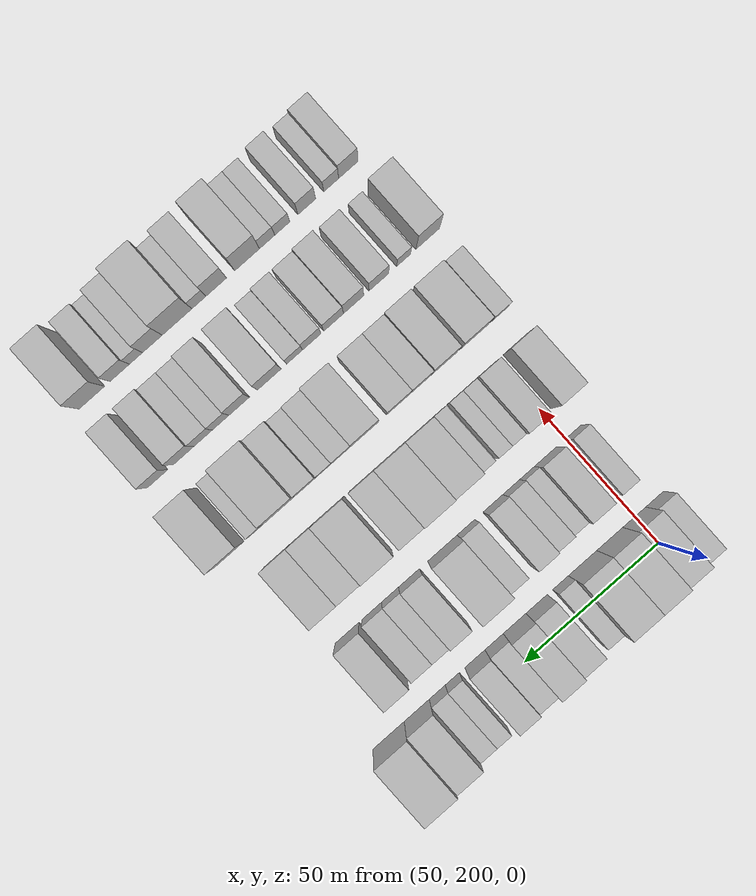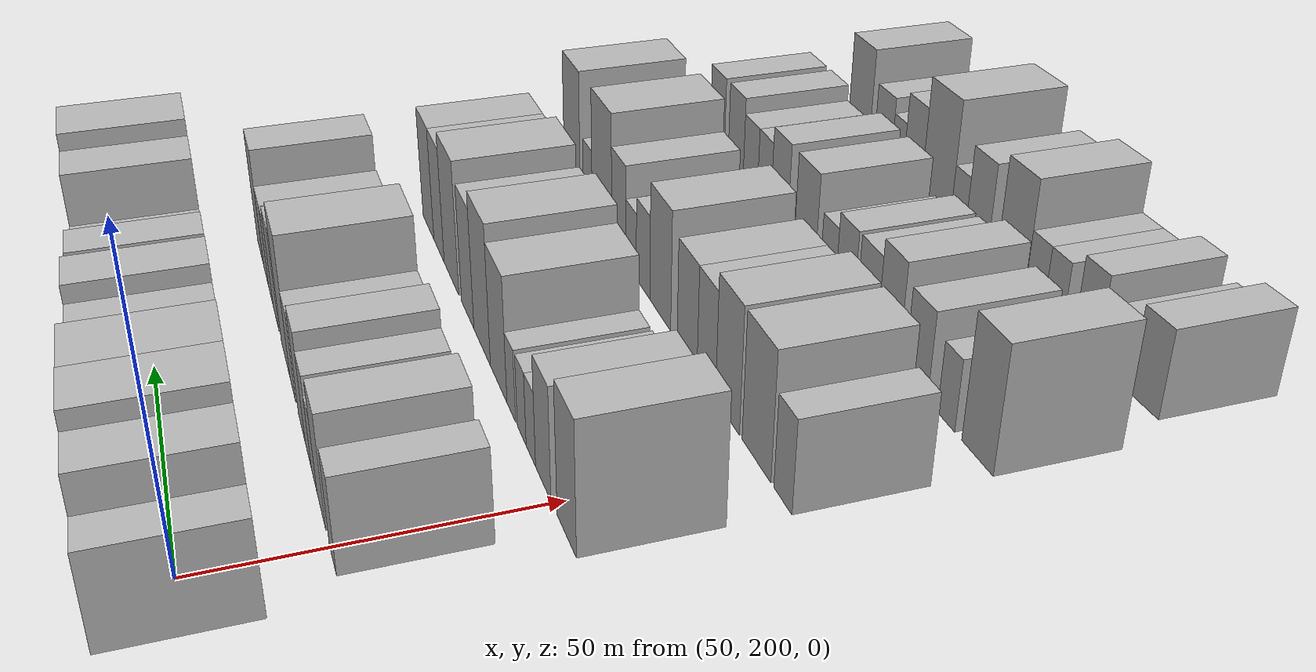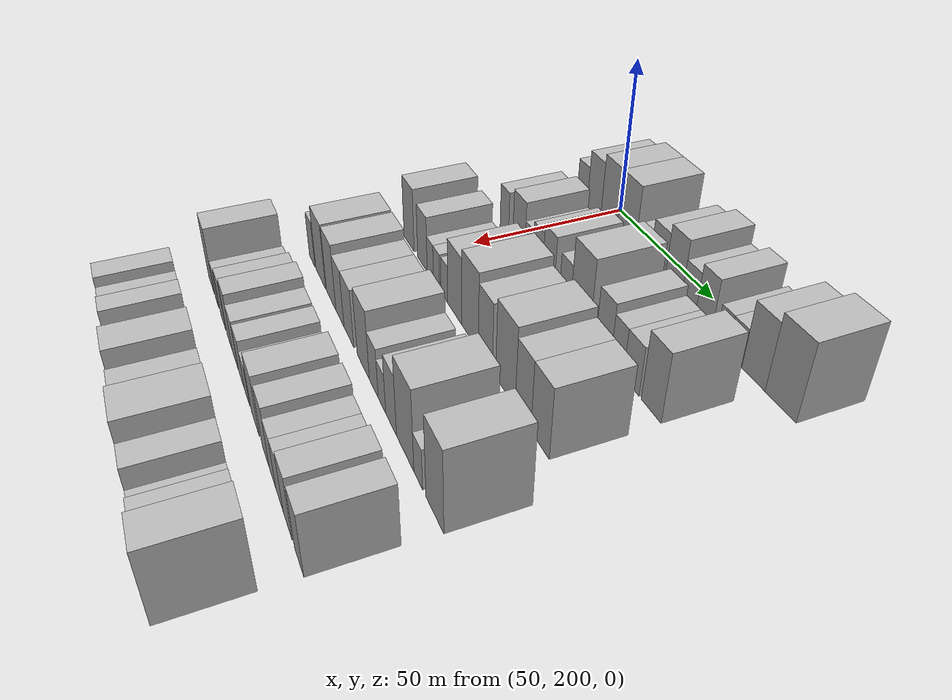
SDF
<sdf version="1.6">
 <world name="default">
  <model name="building_73">
   <static>1</static>
   <pose>50.0000 192.6733 0 0.000000 0.000000 0.000000</pose>
   <link name="link">
    <pose>0 0 7.50 0 0 0</pose>
    <collision name="collision"><geometry><box><size>20.0000 6.6588 15.0000</size></box></geometry></collision>
    <visual name="visual">
     <cast_shadows>0</cast_shadows>
     <geometry><box><size>20.0000 6.6588 15.0000</size></box></geometry>
     <material>
      <script>
       <uri>model://HANNAS_wall/materials/scripts</uri>
       <uri>model://HANNAS_wall/materials/textures</uri>
       <name>vrc/HANNAS_wall</name>
      </script>
     </material>
    </visual>
   </link>
  </model>
  <model name="building_74">
   <static>1</static>
   <pose>50.0000 200.2637 0 0.000000 0.000000 0.000000</pose>
   <link name="link">
    <pose>0 0 10.50 0 0 0</pose>
    <collision name="collision"><geometry><box><size>20.0000 8.5220 21.0000</size></box></geometry></collision>
    <visual name="visual">
     <cast_shadows>0</cast_shadows>
     <geometry><box><size>20.0000 8.5220 21.0000</size></box></geometry>
     <material>
      <script>
       <uri>model://HANNAS_wall/materials/scripts</uri>
       <uri>model://HANNAS_wall/materials/textures</uri>
       <name>vrc/HANNAS_wall</name>
      </script>
     </material>
    </visual>
   </link>
  </model>
  <model name="building_75">
   <static>1</static>
   <pose>50.0000 209.3628 0 0.000000 0.000000 0.000000</pose>
   <link name="link">
    <pose>0 0 12.00 0 0 0</pose>
    <collision name="collision"><geometry><box><size>20.0000 9.6762 24.0000</size></box></geometry></collision>
    <visual name="visual">
     <cast_shadows>0</cast_shadows>
     <geometry><box><size>20.0000 9.6762 24.0000</size></box></geometry>
     <material>
      <script>
       <uri>model://HANNAS_wall/materials/scripts</uri>
       <uri>model://HANNAS_wall/materials/textures</uri>
       <name>vrc/HANNAS_wall</name>
      </script>
     </material>
    </visual>
   </link>
  </model>
  <model name="building_76">
   <static>1</static>
   <pose>50.0000 219.4860 0 0.000000 0.000000 0.000000</pose>
   <link name="link">
    <pose>0 0 12.00 0 0 0</pose>
    <collision name="collision"><geometry><box><size>20.0000 10.5701 24.0000</size></box></geometry></collision>
    <visual name="visual">
     <cast_shadows>0</cast_shadows>
     <geometry><box><size>20.0000 10.5701 24.0000</size></box></geometry>
     <material>
      <script>
       <uri>model://HANNAS_wall/materials/scripts</uri>
       <uri>model://HANNAS_wall/materials/textures</uri>
       <name>vrc/HANNAS_wall</name>
      </script>
     </material>
    </visual>
   </link>
  </model>
  <model name="building_77">
   <static>1</static>
   <pose>50.0000 227.7007 0 0.000000 0.000000 0.000000</pose>
   <link name="link">
    <pose>0 0 6.00 0 0 0</pose>
    <collision name="collision"><geometry><box><size>20.0000 5.8594 12.0000</size></box></geometry></collision>
    <visual name="visual">
     <cast_shadows>0</cast_shadows>
     <geometry><box><size>20.0000 5.8594 12.0000</size></box></geometry>
     <material>
      <script>
       <uri>model://HANNAS_wall/materials/scripts</uri>
       <uri>model://HANNAS_wall/materials/textures</uri>
       <name>vrc/HANNAS_wall</name>
      </script>
     </material>
    </visual>
   </link>
  </model>
  <model name="building_78">
   <static>1</static>
   <pose>50.0000 236.5599 0 0.000000 0.000000 0.000000</pose>
   <link name="link">
    <pose>0 0 9.00 0 0 0</pose>
    <collision name="collision"><geometry><box><size>20.0000 7.8589 18.0000</size></box></geometry></collision>
    <visual name="visual">
     <cast_shadows>0</cast_shadows>
     <geometry><box><size>20.0000 7.8589 18.0000</size></box></geometry>
     <material>
      <script>
       <uri>model://HANNAS_wall/materials/scripts</uri>
       <uri>model://HANNAS_wall/materials/textures</uri>
       <name>vrc/HANNAS_wall</name>
      </script>
     </material>
    </visual>
   </link>
  </model>
  <model name="building_79">
   <static>1</static>
   <pose>50.0000 244.7453 0 0.000000 0.000000 0.000000</pose>
   <link name="link">
    <pose>0 0 10.50 0 0 0</pose>
    <collision name="collision"><geometry><box><size>20.0000 8.5120 21.0000</size></box></geometry></collision>
    <visual name="visual">
     <cast_shadows>0</cast_shadows>
     <geometry><box><size>20.0000 8.5120 21.0000</size></box></geometry>
     <material>
      <script>
       <uri>model://HANNAS_wall/materials/scripts</uri>
       <uri>model://HANNAS_wall/materials/textures</uri>
       <name>vrc/HANNAS_wall</name>
      </script>
     </material>
    </visual>
   </link>
  </model>
  <model name="building_80">
   <static>1</static>
   <pose>50.0000 252.4008 0 0.000000 0.000000 0.000000</pose>
   <link name="link">
    <pose>0 0 7.50 0 0 0</pose>
    <collision name="collision"><geometry><box><size>20.0000 6.7990 15.0000</size></box></geometry></collision>
    <visual name="visual">
     <cast_shadows>0</cast_shadows>
     <geometry><box><size>20.0000 6.7990 15.0000</size></box></geometry>
     <material>
      <script>
       <uri>model://HANNAS_wall/materials/scripts</uri>
       <uri>model://HANNAS_wall/materials/textures</uri>
       <name>vrc/HANNAS_wall</name>
      </script>
     </material>
    </visual>
   </link>
  </model>
  <model name="building_81">
   <static>1</static>
   <pose>50.0000 259.5602 0 0.000000 0.000000 0.000000</pose>
   <link name="link">
    <pose>0 0 9.00 0 0 0</pose>
    <collision name="collision"><geometry><box><size>20.0000 7.5198 18.0000</size></box></geometry></collision>
    <visual name="visual">
     <cast_shadows>0</cast_shadows>
     <geometry><box><size>20.0000 7.5198 18.0000</size></box></geometry>
     <material>
      <script>
       <uri>model://HANNAS_wall/materials/scripts</uri>
       <uri>model://HANNAS_wall/materials/textures</uri>
       <name>vrc/HANNAS_wall</name>
      </script>
     </material>
    </visual>
   </link>
  </model>
  <model name="building_82">
   <static>1</static>
   <pose>50.0000 267.9510 0 0.000000 0.000000 0.000000</pose>
   <link name="link">
    <pose>0 0 6.00 0 0 0</pose>
    <collision name="collision"><geometry><box><size>20.0000 5.2618 12.0000</size></box></geometry></collision>
    <visual name="visual">
     <cast_shadows>0</cast_shadows>
     <geometry><box><size>20.0000 5.2618 12.0000</size></box></geometry>
     <material>
      <script>
       <uri>model://HANNAS_wall/materials/scripts</uri>
       <uri>model://HANNAS_wall/materials/textures</uri>
       <name>vrc/HANNAS_wall</name>
      </script>
     </material>
    </visual>
   </link>
  </model>
  <model name="building_83">
   <static>1</static>
   <pose>50.0000 273.5645 0 0.000000 0.000000 0.000000</pose>
   <link name="link">
    <pose>0 0 6.00 0 0 0</pose>
    <collision name="collision"><geometry><box><size>20.0000 5.9652 12.0000</size></box></geometry></collision>
    <visual name="visual">
     <cast_shadows>0</cast_shadows>
     <geometry><box><size>20.0000 5.9652 12.0000</size></box></geometry>
     <material>
      <script>
       <uri>model://HANNAS_wall/materials/scripts</uri>
       <uri>model://HANNAS_wall/materials/textures</uri>
       <name>vrc/HANNAS_wall</name>
      </script>
     </material>
    </visual>
   </link>
  </model>
  <model name="building_84">
   <static>1</static>
   <pose>50.0000 281.1882 0 0.000000 0.000000 0.000000</pose>
   <link name="link">
    <pose>0 0 10.50 0 0 0</pose>
    <collision name="collision"><geometry><box><size>20.0000 9.2823 21.0000</size></box></geometry></collision>
    <visual name="visual">
     <cast_shadows>0</cast_shadows>
     <geometry><box><size>20.0000 9.2823 21.0000</size></box></geometry>
     <material>
      <script>
       <uri>model://HANNAS_wall/materials/scripts</uri>
       <uri>model://HANNAS_wall/materials/textures</uri>
       <name>vrc/HANNAS_wall</name>
      </script>
     </material>
    </visual>
   </link>
  </model>
  <model name="building_85">
   <static>1</static>
   <pose>50.0000 291.6208 0 0.000000 0.000000 0.000000</pose>
   <link name="link">
    <pose>0 0 12.00 0 0 0</pose>
    <collision name="collision"><geometry><box><size>20.0000 11.5828 24.0000</size></box></geometry></collision>
    <visual name="visual">
     <cast_shadows>0</cast_shadows>
     <geometry><box><size>20.0000 11.5828 24.0000</size></box></geometry>
     <material>
      <script>
       <uri>model://HANNAS_wall/materials/scripts</uri>
       <uri>model://HANNAS_wall/materials/textures</uri>
       <name>vrc/HANNAS_wall</name>
      </script>
     </material>
    </visual>
   </link>
  </model>
  <model name="building_184">
   <static>1</static>
   <pose>79.0000 197.4555 0 0.000000 0.000000 0.000000</pose>
   <link name="link">
    <pose>0 0 7.50 0 0 0</pose>
    <collision name="collision"><geometry><box><size>20.0000 6.1608 15.0000</size></box></geometry></collision>
    <visual name="visual">
     <cast_shadows>0</cast_shadows>
     <geometry><box><size>20.0000 6.1608 15.0000</size></box></geometry>
     <material>
      <script>
       <uri>model://HANNAS_wall/materials/scripts</uri>
       <uri>model://HANNAS_wall/materials/textures</uri>
       <name>vrc/HANNAS_wall</name>
      </script>
     </material>
    </visual>
   </link>
  </model>
  <model name="building_185">
   <static>1</static>
   <pose>79.0000 207.6582 0 0.000000 0.000000 0.000000</pose>
   <link name="link">
    <pose>0 0 9.00 0 0 0</pose>
    <collision name="collision"><geometry><box><size>20.0000 8.2447 18.0000</size></box></geometry></collision>
    <visual name="visual">
     <cast_shadows>0</cast_shadows>
     <geometry><box><size>20.0000 8.2447 18.0000</size></box></geometry>
     <material>
      <script>
       <uri>model://HANNAS_wall/materials/scripts</uri>
       <uri>model://HANNAS_wall/materials/textures</uri>
       <name>vrc/HANNAS_wall</name>
      </script>
     </material>
    </visual>
   </link>
  </model>
  <model name="building_186">
   <static>1</static>
   <pose>79.0000 214.4789 0 0.000000 0.000000 0.000000</pose>
   <link name="link">
    <pose>0 0 6.00 0 0 0</pose>
    <collision name="collision"><geometry><box><size>20.0000 5.3967 12.0000</size></box></geometry></collision>
    <visual name="visual">
     <cast_shadows>0</cast_shadows>
     <geometry><box><size>20.0000 5.3967 12.0000</size></box></geometry>
     <material>
      <script>
       <uri>model://HANNAS_wall/materials/scripts</uri>
       <uri>model://HANNAS_wall/materials/textures</uri>
       <name>vrc/HANNAS_wall</name>
      </script>
     </material>
    </visual>
   </link>
  </model>
  <model name="building_187">
   <static>1</static>
   <pose>79.0000 220.3224 0 0.000000 0.000000 0.000000</pose>
   <link name="link">
    <pose>0 0 7.50 0 0 0</pose>
    <collision name="collision"><geometry><box><size>20.0000 6.2902 15.0000</size></box></geometry></collision>
    <visual name="visual">
     <cast_shadows>0</cast_shadows>
     <geometry><box><size>20.0000 6.2902 15.0000</size></box></geometry>
     <material>
      <script>
       <uri>model://HANNAS_wall/materials/scripts</uri>
       <uri>model://HANNAS_wall/materials/textures</uri>
       <name>vrc/HANNAS_wall</name>
      </script>
     </material>
    </visual>
   </link>
  </model>
  <model name="building_188">
   <static>1</static>
   <pose>79.0000 227.1504 0 0.000000 0.000000 0.000000</pose>
   <link name="link">
    <pose>0 0 9.00 0 0 0</pose>
    <collision name="collision"><geometry><box><size>20.0000 7.3658 18.0000</size></box></geometry></collision>
    <visual name="visual">
     <cast_shadows>0</cast_shadows>
     <geometry><box><size>20.0000 7.3658 18.0000</size></box></geometry>
     <material>
      <script>
       <uri>model://HANNAS_wall/materials/scripts</uri>
       <uri>model://HANNAS_wall/materials/textures</uri>
       <name>vrc/HANNAS_wall</name>
      </script>
     </material>
    </visual>
   </link>
  </model>
  <model name="building_189">
   <static>1</static>
   <pose>79.0000 237.0925 0 0.000000 0.000000 0.000000</pose>
   <link name="link">
    <pose>0 0 7.50 0 0 0</pose>
    <collision name="collision"><geometry><box><size>20.0000 6.5183 15.0000</size></box></geometry></collision>
    <visual name="visual">
     <cast_shadows>0</cast_shadows>
     <geometry><box><size>20.0000 6.5183 15.0000</size></box></geometry>
     <material>
      <script>
       <uri>model://HANNAS_wall/materials/scripts</uri>
       <uri>model://HANNAS_wall/materials/textures</uri>
       <name>vrc/HANNAS_wall</name>
      </script>
     </material>
    </visual>
   </link>
  </model>
  <model name="building_190">
   <static>1</static>
   <pose>79.0000 245.8757 0 0.000000 0.000000 0.000000</pose>
   <link name="link">
    <pose>0 0 12.00 0 0 0</pose>
    <collision name="collision"><geometry><box><size>20.0000 11.0482 24.0000</size></box></geometry></collision>
    <visual name="visual">
     <cast_shadows>0</cast_shadows>
     <geometry><box><size>20.0000 11.0482 24.0000</size></box></geometry>
     <material>
      <script>
       <uri>model://HANNAS_wall/materials/scripts</uri>
       <uri>model://HANNAS_wall/materials/textures</uri>
       <name>vrc/HANNAS_wall</name>
      </script>
     </material>
    </visual>
   </link>
  </model>
  <model name="building_191">
   <static>1</static>
   <pose>79.0000 258.3086 0 0.000000 0.000000 0.000000</pose>
   <link name="link">
    <pose>0 0 9.00 0 0 0</pose>
    <collision name="collision"><geometry><box><size>20.0000 7.8175 18.0000</size></box></geometry></collision>
    <visual name="visual">
     <cast_shadows>0</cast_shadows>
     <geometry><box><size>20.0000 7.8175 18.0000</size></box></geometry>
     <material>
      <script>
       <uri>model://HANNAS_wall/materials/scripts</uri>
       <uri>model://HANNAS_wall/materials/textures</uri>
       <name>vrc/HANNAS_wall</name>
      </script>
     </material>
    </visual>
   </link>
  </model>
  <model name="building_192">
   <static>1</static>
   <pose>79.0000 265.3425 0 0.000000 0.000000 0.000000</pose>
   <link name="link">
    <pose>0 0 7.50 0 0 0</pose>
    <collision name="collision"><geometry><box><size>20.0000 6.2503 15.0000</size></box></geometry></collision>
    <visual name="visual">
     <cast_shadows>0</cast_shadows>
     <geometry><box><size>20.0000 6.2503 15.0000</size></box></geometry>
     <material>
      <script>
       <uri>model://HANNAS_wall/materials/scripts</uri>
       <uri>model://HANNAS_wall/materials/textures</uri>
       <name>vrc/HANNAS_wall</name>
      </script>
     </material>
    </visual>
   </link>
  </model>
  <model name="building_193">
   <static>1</static>
   <pose>79.0000 272.1904 0 0.000000 0.000000 0.000000</pose>
   <link name="link">
    <pose>0 0 7.50 0 0 0</pose>
    <collision name="collision"><geometry><box><size>20.0000 7.4456 15.0000</size></box></geometry></collision>
    <visual name="visual">
     <cast_shadows>0</cast_shadows>
     <geometry><box><size>20.0000 7.4456 15.0000</size></box></geometry>
     <material>
      <script>
       <uri>model://HANNAS_wall/materials/scripts</uri>
       <uri>model://HANNAS_wall/materials/textures</uri>
       <name>vrc/HANNAS_wall</name>
      </script>
     </material>
    </visual>
   </link>
  </model>
  <model name="building_194">
   <static>1</static>
   <pose>79.0000 281.3418 0 0.000000 0.000000 0.000000</pose>
   <link name="link">
    <pose>0 0 10.50 0 0 0</pose>
    <collision name="collision"><geometry><box><size>20.0000 8.8572 21.0000</size></box></geometry></collision>
    <visual name="visual">
     <cast_shadows>0</cast_shadows>
     <geometry><box><size>20.0000 8.8572 21.0000</size></box></geometry>
     <material>
      <script>
       <uri>model://HANNAS_wall/materials/scripts</uri>
       <uri>model://HANNAS_wall/materials/textures</uri>
       <name>vrc/HANNAS_wall</name>
      </script>
     </material>
    </visual>
   </link>
  </model>
  <model name="building_299">
   <static>1</static>
   <pose>108.0000 193.0941 0 0.000000 0.000000 0.000000</pose>
   <link name="link">
    <pose>0 0 10.50 0 0 0</pose>
    <collision name="collision"><geometry><box><size>20.0000 9.0253 21.0000</size></box></geometry></collision>
    <visual name="visual">
     <cast_shadows>0</cast_shadows>
     <geometry><box><size>20.0000 9.0253 21.0000</size></box></geometry>
     <material>
      <script>
       <uri>model://HANNAS_wall/materials/scripts</uri>
       <uri>model://HANNAS_wall/materials/textures</uri>
       <name>vrc/HANNAS_wall</name>
      </script>
     </material>
    </visual>
   </link>
  </model>
  <model name="building_300">
   <static>1</static>
   <pose>108.0000 204.5307 0 0.000000 0.000000 0.000000</pose>
   <link name="link">
    <pose>0 0 9.00 0 0 0</pose>
    <collision name="collision"><geometry><box><size>20.0000 7.8477 18.0000</size></box></geometry></collision>
    <visual name="visual">
     <cast_shadows>0</cast_shadows>
     <geometry><box><size>20.0000 7.8477 18.0000</size></box></geometry>
     <material>
      <script>
       <uri>model://HANNAS_wall/materials/scripts</uri>
       <uri>model://HANNAS_wall/materials/textures</uri>
       <name>vrc/HANNAS_wall</name>
      </script>
     </material>
    </visual>
   </link>
  </model>
  <model name="building_301">
   <static>1</static>
   <pose>108.0000 210.9779 0 0.000000 0.000000 0.000000</pose>
   <link name="link">
    <pose>0 0 6.00 0 0 0</pose>
    <collision name="collision"><geometry><box><size>20.0000 5.0468 12.0000</size></box></geometry></collision>
    <visual name="visual">
     <cast_shadows>0</cast_shadows>
     <geometry><box><size>20.0000 5.0468 12.0000</size></box></geometry>
     <material>
      <script>
       <uri>model://HANNAS_wall/materials/scripts</uri>
       <uri>model://HANNAS_wall/materials/textures</uri>
       <name>vrc/HANNAS_wall</name>
      </script>
     </material>
    </visual>
   </link>
  </model>
  <model name="building_302">
   <static>1</static>
   <pose>108.0000 215.9821 0 0.000000 0.000000 0.000000</pose>
   <link name="link">
    <pose>0 0 6.00 0 0 0</pose>
    <collision name="collision"><geometry><box><size>20.0000 4.9616 12.0000</size></box></geometry></collision>
    <visual name="visual">
     <cast_shadows>0</cast_shadows>
     <geometry><box><size>20.0000 4.9616 12.0000</size></box></geometry>
     <material>
      <script>
       <uri>model://HANNAS_wall/materials/scripts</uri>
       <uri>model://HANNAS_wall/materials/textures</uri>
       <name>vrc/HANNAS_wall</name>
      </script>
     </material>
    </visual>
   </link>
  </model>
  <model name="building_303">
   <static>1</static>
   <pose>108.0000 221.9756 0 0.000000 0.000000 0.000000</pose>
   <link name="link">
    <pose>0 0 6.00 0 0 0</pose>
    <collision name="collision"><geometry><box><size>20.0000 5.0255 12.0000</size></box></geometry></collision>
    <visual name="visual">
     <cast_shadows>0</cast_shadows>
     <geometry><box><size>20.0000 5.0255 12.0000</size></box></geometry>
     <material>
      <script>
       <uri>model://HANNAS_wall/materials/scripts</uri>
       <uri>model://HANNAS_wall/materials/textures</uri>
       <name>vrc/HANNAS_wall</name>
      </script>
     </material>
    </visual>
   </link>
  </model>
  <model name="building_304">
   <static>1</static>
   <pose>108.0000 229.6287 0 0.000000 0.000000 0.000000</pose>
   <link name="link">
    <pose>0 0 10.50 0 0 0</pose>
    <collision name="collision"><geometry><box><size>20.0000 10.2805 21.0000</size></box></geometry></collision>
    <visual name="visual">
     <cast_shadows>0</cast_shadows>
     <geometry><box><size>20.0000 10.2805 21.0000</size></box></geometry>
     <material>
      <script>
       <uri>model://HANNAS_wall/materials/scripts</uri>
       <uri>model://HANNAS_wall/materials/textures</uri>
       <name>vrc/HANNAS_wall</name>
      </script>
     </material>
    </visual>
   </link>
  </model>
  <model name="building_305">
   <static>1</static>
   <pose>108.0000 240.2817 0 0.000000 0.000000 0.000000</pose>
   <link name="link">
    <pose>0 0 12.00 0 0 0</pose>
    <collision name="collision"><geometry><box><size>20.0000 11.0256 24.0000</size></box></geometry></collision>
    <visual name="visual">
     <cast_shadows>0</cast_shadows>
     <geometry><box><size>20.0000 11.0256 24.0000</size></box></geometry>
     <material>
      <script>
       <uri>model://HANNAS_wall/materials/scripts</uri>
       <uri>model://HANNAS_wall/materials/textures</uri>
       <name>vrc/HANNAS_wall</name>
      </script>
     </material>
    </visual>
   </link>
  </model>
  <model name="building_306">
   <static>1</static>
   <pose>108.0000 250.2514 0 0.000000 0.000000 0.000000</pose>
   <link name="link">
    <pose>0 0 10.50 0 0 0</pose>
    <collision name="collision"><geometry><box><size>20.0000 8.9137 21.0000</size></box></geometry></collision>
    <visual name="visual">
     <cast_shadows>0</cast_shadows>
     <geometry><box><size>20.0000 8.9137 21.0000</size></box></geometry>
     <material>
      <script>
       <uri>model://HANNAS_wall/materials/scripts</uri>
       <uri>model://HANNAS_wall/materials/textures</uri>
       <name>vrc/HANNAS_wall</name>
      </script>
     </material>
    </visual>
   </link>
  </model>
  <model name="building_307">
   <static>1</static>
   <pose>108.0000 262.4276 0 0.000000 0.000000 0.000000</pose>
   <link name="link">
    <pose>0 0 12.00 0 0 0</pose>
    <collision name="collision"><geometry><box><size>20.0000 11.4388 24.0000</size></box></geometry></collision>
    <visual name="visual">
     <cast_shadows>0</cast_shadows>
     <geometry><box><size>20.0000 11.4388 24.0000</size></box></geometry>
     <material>
      <script>
       <uri>model://HANNAS_wall/materials/scripts</uri>
       <uri>model://HANNAS_wall/materials/textures</uri>
       <name>vrc/HANNAS_wall</name>
      </script>
     </material>
    </visual>
   </link>
  </model>
  <model name="building_308">
   <static>1</static>
   <pose>108.0000 272.4335 0 0.000000 0.000000 0.000000</pose>
   <link name="link">
    <pose>0 0 10.50 0 0 0</pose>
    <collision name="collision"><geometry><box><size>20.0000 8.5729 21.0000</size></box></geometry></collision>
    <visual name="visual">
     <cast_shadows>0</cast_shadows>
     <geometry><box><size>20.0000 8.5729 21.0000</size></box></geometry>
     <material>
      <script>
       <uri>model://HANNAS_wall/materials/scripts</uri>
       <uri>model://HANNAS_wall/materials/textures</uri>
       <name>vrc/HANNAS_wall</name>
      </script>
     </material>
    </visual>
   </link>
  </model>
  <model name="building_309">
   <static>1</static>
   <pose>108.0000 281.4390 0 0.000000 0.000000 0.000000</pose>
   <link name="link">
    <pose>0 0 10.50 0 0 0</pose>
    <collision name="collision"><geometry><box><size>20.0000 9.4382 21.0000</size></box></geometry></collision>
    <visual name="visual">
     <cast_shadows>0</cast_shadows>
     <geometry><box><size>20.0000 9.4382 21.0000</size></box></geometry>
     <material>
      <script>
       <uri>model://HANNAS_wall/materials/scripts</uri>
       <uri>model://HANNAS_wall/materials/textures</uri>
       <name>vrc/HANNAS_wall</name>
      </script>
     </material>
    </visual>
   </link>
  </model>
  <model name="building_409">
   <static>1</static>
   <pose>137.0000 191.3239 0 0.000000 0.000000 0.000000</pose>
   <link name="link">
    <pose>0 0 7.50 0 0 0</pose>
    <collision name="collision"><geometry><box><size>20.0000 6.1326 15.0000</size></box></geometry></collision>
    <visual name="visual">
     <cast_shadows>0</cast_shadows>
     <geometry><box><size>20.0000 6.1326 15.0000</size></box></geometry>
     <material>
      <script>
       <uri>model://HANNAS_wall/materials/scripts</uri>
       <uri>model://HANNAS_wall/materials/textures</uri>
       <name>vrc/HANNAS_wall</name>
      </script>
     </material>
    </visual>
   </link>
  </model>
  <model name="building_410">
   <static>1</static>
   <pose>137.0000 200.6067 0 0.000000 0.000000 0.000000</pose>
   <link name="link">
    <pose>0 0 10.50 0 0 0</pose>
    <collision name="collision"><geometry><box><size>20.0000 10.4329 21.0000</size></box></geometry></collision>
    <visual name="visual">
     <cast_shadows>0</cast_shadows>
     <geometry><box><size>20.0000 10.4329 21.0000</size></box></geometry>
     <material>
      <script>
       <uri>model://HANNAS_wall/materials/scripts</uri>
       <uri>model://HANNAS_wall/materials/textures</uri>
       <name>vrc/HANNAS_wall</name>
      </script>
     </material>
    </visual>
   </link>
  </model>
  <model name="building_411">
   <static>1</static>
   <pose>137.0000 211.5571 0 0.000000 0.000000 0.000000</pose>
   <link name="link">
    <pose>0 0 10.50 0 0 0</pose>
    <collision name="collision"><geometry><box><size>20.0000 9.4679 21.0000</size></box></geometry></collision>
    <visual name="visual">
     <cast_shadows>0</cast_shadows>
     <geometry><box><size>20.0000 9.4679 21.0000</size></box></geometry>
     <material>
      <script>
       <uri>model://HANNAS_wall/materials/scripts</uri>
       <uri>model://HANNAS_wall/materials/textures</uri>
       <name>vrc/HANNAS_wall</name>
      </script>
     </material>
    </visual>
   </link>
  </model>
  <model name="building_412">
   <static>1</static>
   <pose>137.0000 220.1637 0 0.000000 0.000000 0.000000</pose>
   <link name="link">
    <pose>0 0 9.00 0 0 0</pose>
    <collision name="collision"><geometry><box><size>20.0000 7.7453 18.0000</size></box></geometry></collision>
    <visual name="visual">
     <cast_shadows>0</cast_shadows>
     <geometry><box><size>20.0000 7.7453 18.0000</size></box></geometry>
     <material>
      <script>
       <uri>model://HANNAS_wall/materials/scripts</uri>
       <uri>model://HANNAS_wall/materials/textures</uri>
       <name>vrc/HANNAS_wall</name>
      </script>
     </material>
    </visual>
   </link>
  </model>
  <model name="building_413">
   <static>1</static>
   <pose>137.0000 228.4826 0 0.000000 0.000000 0.000000</pose>
   <link name="link">
    <pose>0 0 9.00 0 0 0</pose>
    <collision name="collision"><geometry><box><size>20.0000 8.8926 18.0000</size></box></geometry></collision>
    <visual name="visual">
     <cast_shadows>0</cast_shadows>
     <geometry><box><size>20.0000 8.8926 18.0000</size></box></geometry>
     <material>
      <script>
       <uri>model://HANNAS_wall/materials/scripts</uri>
       <uri>model://HANNAS_wall/materials/textures</uri>
       <name>vrc/HANNAS_wall</name>
      </script>
     </material>
    </visual>
   </link>
  </model>
  <model name="building_414">
   <static>1</static>
   <pose>137.0000 241.0173 0 0.000000 0.000000 0.000000</pose>
   <link name="link">
    <pose>0 0 10.50 0 0 0</pose>
    <collision name="collision"><geometry><box><size>20.0000 10.1768 21.0000</size></box></geometry></collision>
    <visual name="visual">
     <cast_shadows>0</cast_shadows>
     <geometry><box><size>20.0000 10.1768 21.0000</size></box></geometry>
     <material>
      <script>
       <uri>model://HANNAS_wall/materials/scripts</uri>
       <uri>model://HANNAS_wall/materials/textures</uri>
       <name>vrc/HANNAS_wall</name>
      </script>
     </material>
    </visual>
   </link>
  </model>
  <model name="building_415">
   <static>1</static>
   <pose>137.0000 249.6010 0 0.000000 0.000000 0.000000</pose>
   <link name="link">
    <pose>0 0 7.50 0 0 0</pose>
    <collision name="collision"><geometry><box><size>20.0000 6.9904 15.0000</size></box></geometry></collision>
    <visual name="visual">
     <cast_shadows>0</cast_shadows>
     <geometry><box><size>20.0000 6.9904 15.0000</size></box></geometry>
     <material>
      <script>
       <uri>model://HANNAS_wall/materials/scripts</uri>
       <uri>model://HANNAS_wall/materials/textures</uri>
       <name>vrc/HANNAS_wall</name>
      </script>
     </material>
    </visual>
   </link>
  </model>
  <model name="building_416">
   <static>1</static>
   <pose>137.0000 255.9565 0 0.000000 0.000000 0.000000</pose>
   <link name="link">
    <pose>0 0 6.00 0 0 0</pose>
    <collision name="collision"><geometry><box><size>20.0000 5.7207 12.0000</size></box></geometry></collision>
    <visual name="visual">
     <cast_shadows>0</cast_shadows>
     <geometry><box><size>20.0000 5.7207 12.0000</size></box></geometry>
     <material>
      <script>
       <uri>model://HANNAS_wall/materials/scripts</uri>
       <uri>model://HANNAS_wall/materials/textures</uri>
       <name>vrc/HANNAS_wall</name>
      </script>
     </material>
    </visual>
   </link>
  </model>
  <model name="building_417">
   <static>1</static>
   <pose>137.0000 262.7168 0 0.000000 0.000000 0.000000</pose>
   <link name="link">
    <pose>0 0 9.00 0 0 0</pose>
    <collision name="collision"><geometry><box><size>20.0000 7.7999 18.0000</size></box></geometry></collision>
    <visual name="visual">
     <cast_shadows>0</cast_shadows>
     <geometry><box><size>20.0000 7.7999 18.0000</size></box></geometry>
     <material>
      <script>
       <uri>model://HANNAS_wall/materials/scripts</uri>
       <uri>model://HANNAS_wall/materials/textures</uri>
       <name>vrc/HANNAS_wall</name>
      </script>
     </material>
    </visual>
   </link>
  </model>
  <model name="building_418">
   <static>1</static>
   <pose>137.0000 272.4656 0 0.000000 0.000000 0.000000</pose>
   <link name="link">
    <pose>0 0 12.00 0 0 0</pose>
    <collision name="collision"><geometry><box><size>20.0000 11.6978 24.0000</size></box></geometry></collision>
    <visual name="visual">
     <cast_shadows>0</cast_shadows>
     <geometry><box><size>20.0000 11.6978 24.0000</size></box></geometry>
     <material>
      <script>
       <uri>model://HANNAS_wall/materials/scripts</uri>
       <uri>model://HANNAS_wall/materials/textures</uri>
       <name>vrc/HANNAS_wall</name>
      </script>
     </material>
    </visual>
   </link>
  </model>
  <model name="building_419">
   <static>1</static>
   <pose>137.0000 281.0846 0 0.000000 0.000000 0.000000</pose>
   <link name="link">
    <pose>0 0 6.00 0 0 0</pose>
    <collision name="collision"><geometry><box><size>20.0000 5.5402 12.0000</size></box></geometry></collision>
    <visual name="visual">
     <cast_shadows>0</cast_shadows>
     <geometry><box><size>20.0000 5.5402 12.0000</size></box></geometry>
     <material>
      <script>
       <uri>model://HANNAS_wall/materials/scripts</uri>
       <uri>model://HANNAS_wall/materials/textures</uri>
       <name>vrc/HANNAS_wall</name>
      </script>
     </material>
    </visual>
   </link>
  </model>
  <model name="building_420">
   <static>1</static>
   <pose>137.0000 291.1342 0 0.000000 0.000000 0.000000</pose>
   <link name="link">
    <pose>0 0 12.00 0 0 0</pose>
    <collision name="collision"><geometry><box><size>20.0000 10.5591 24.0000</size></box></geometry></collision>
    <visual name="visual">
     <cast_shadows>0</cast_shadows>
     <geometry><box><size>20.0000 10.5591 24.0000</size></box></geometry>
     <material>
      <script>
       <uri>model://HANNAS_wall/materials/scripts</uri>
       <uri>model://HANNAS_wall/materials/textures</uri>
       <name>vrc/HANNAS_wall</name>
      </script>
     </material>
    </visual>
   </link>
  </model>
  <model name="building_522">
   <static>1</static>
   <pose>166.0000 191.9171 0 0.000000 0.000000 0.000000</pose>
   <link name="link">
    <pose>0 0 10.50 0 0 0</pose>
    <collision name="collision"><geometry><box><size>20.0000 8.7126 21.0000</size></box></geometry></collision>
    <visual name="visual">
     <cast_shadows>0</cast_shadows>
     <geometry><box><size>20.0000 8.7126 21.0000</size></box></geometry>
     <material>
      <script>
       <uri>model://HANNAS_wall/materials/scripts</uri>
       <uri>model://HANNAS_wall/materials/textures</uri>
       <name>vrc/HANNAS_wall</name>
      </script>
     </material>
    </visual>
   </link>
  </model>
  <model name="building_523">
   <static>1</static>
   <pose>166.0000 200.8405 0 0.000000 0.000000 0.000000</pose>
   <link name="link">
    <pose>0 0 6.00 0 0 0</pose>
    <collision name="collision"><geometry><box><size>20.0000 5.1341 12.0000</size></box></geometry></collision>
    <visual name="visual">
     <cast_shadows>0</cast_shadows>
     <geometry><box><size>20.0000 5.1341 12.0000</size></box></geometry>
     <material>
      <script>
       <uri>model://HANNAS_wall/materials/scripts</uri>
       <uri>model://HANNAS_wall/materials/textures</uri>
       <name>vrc/HANNAS_wall</name>
      </script>
     </material>
    </visual>
   </link>
  </model>
  <model name="building_524">
   <static>1</static>
   <pose>166.0000 210.0428 0 0.000000 0.000000 0.000000</pose>
   <link name="link">
    <pose>0 0 7.50 0 0 0</pose>
    <collision name="collision"><geometry><box><size>20.0000 7.2706 15.0000</size></box></geometry></collision>
    <visual name="visual">
     <cast_shadows>0</cast_shadows>
     <geometry><box><size>20.0000 7.2706 15.0000</size></box></geometry>
     <material>
      <script>
       <uri>model://HANNAS_wall/materials/scripts</uri>
       <uri>model://HANNAS_wall/materials/textures</uri>
       <name>vrc/HANNAS_wall</name>
      </script>
     </material>
    </visual>
   </link>
  </model>
  <model name="building_525">
   <static>1</static>
   <pose>166.0000 219.4234 0 0.000000 0.000000 0.000000</pose>
   <link name="link">
    <pose>0 0 9.00 0 0 0</pose>
    <collision name="collision"><geometry><box><size>20.0000 7.4906 18.0000</size></box></geometry></collision>
    <visual name="visual">
     <cast_shadows>0</cast_shadows>
     <geometry><box><size>20.0000 7.4906 18.0000</size></box></geometry>
     <material>
      <script>
       <uri>model://HANNAS_wall/materials/scripts</uri>
       <uri>model://HANNAS_wall/materials/textures</uri>
       <name>vrc/HANNAS_wall</name>
      </script>
     </material>
    </visual>
   </link>
  </model>
  <model name="building_526">
   <static>1</static>
   <pose>166.0000 226.8328 0 0.000000 0.000000 0.000000</pose>
   <link name="link">
    <pose>0 0 7.50 0 0 0</pose>
    <collision name="collision"><geometry><box><size>20.0000 7.3281 15.0000</size></box></geometry></collision>
    <visual name="visual">
     <cast_shadows>0</cast_shadows>
     <geometry><box><size>20.0000 7.3281 15.0000</size></box></geometry>
     <material>
      <script>
       <uri>model://HANNAS_wall/materials/scripts</uri>
       <uri>model://HANNAS_wall/materials/textures</uri>
       <name>vrc/HANNAS_wall</name>
      </script>
     </material>
    </visual>
   </link>
  </model>
  <model name="building_527">
   <static>1</static>
   <pose>166.0000 234.9199 0 0.000000 0.000000 0.000000</pose>
   <link name="link">
    <pose>0 0 7.50 0 0 0</pose>
    <collision name="collision"><geometry><box><size>20.0000 6.8462 15.0000</size></box></geometry></collision>
    <visual name="visual">
     <cast_shadows>0</cast_shadows>
     <geometry><box><size>20.0000 6.8462 15.0000</size></box></geometry>
     <material>
      <script>
       <uri>model://HANNAS_wall/materials/scripts</uri>
       <uri>model://HANNAS_wall/materials/textures</uri>
       <name>vrc/HANNAS_wall</name>
      </script>
     </material>
    </visual>
   </link>
  </model>
  <model name="building_528">
   <static>1</static>
   <pose>166.0000 241.3189 0 0.000000 0.000000 0.000000</pose>
   <link name="link">
    <pose>0 0 6.00 0 0 0</pose>
    <collision name="collision"><geometry><box><size>20.0000 5.9518 12.0000</size></box></geometry></collision>
    <visual name="visual">
     <cast_shadows>0</cast_shadows>
     <geometry><box><size>20.0000 5.9518 12.0000</size></box></geometry>
     <material>
      <script>
       <uri>model://HANNAS_wall/materials/scripts</uri>
       <uri>model://HANNAS_wall/materials/textures</uri>
       <name>vrc/HANNAS_wall</name>
      </script>
     </material>
    </visual>
   </link>
  </model>
  <model name="building_529">
   <static>1</static>
   <pose>166.0000 250.6847 0 0.000000 0.000000 0.000000</pose>
   <link name="link">
    <pose>0 0 9.00 0 0 0</pose>
    <collision name="collision"><geometry><box><size>20.0000 8.7798 18.0000</size></box></geometry></collision>
    <visual name="visual">
     <cast_shadows>0</cast_shadows>
     <geometry><box><size>20.0000 8.7798 18.0000</size></box></geometry>
     <material>
      <script>
       <uri>model://HANNAS_wall/materials/scripts</uri>
       <uri>model://HANNAS_wall/materials/textures</uri>
       <name>vrc/HANNAS_wall</name>
      </script>
     </material>
    </visual>
   </link>
  </model>
  <model name="building_530">
   <static>1</static>
   <pose>166.0000 261.8592 0 0.000000 0.000000 0.000000</pose>
   <link name="link">
    <pose>0 0 9.00 0 0 0</pose>
    <collision name="collision"><geometry><box><size>20.0000 7.5691 18.0000</size></box></geometry></collision>
    <visual name="visual">
     <cast_shadows>0</cast_shadows>
     <geometry><box><size>20.0000 7.5691 18.0000</size></box></geometry>
     <material>
      <script>
       <uri>model://HANNAS_wall/materials/scripts</uri>
       <uri>model://HANNAS_wall/materials/textures</uri>
       <name>vrc/HANNAS_wall</name>
      </script>
     </material>
    </visual>
   </link>
  </model>
  <model name="building_531">
   <static>1</static>
   <pose>166.0000 268.7578 0 0.000000 0.000000 0.000000</pose>
   <link name="link">
    <pose>0 0 7.50 0 0 0</pose>
    <collision name="collision"><geometry><box><size>20.0000 6.2282 15.0000</size></box></geometry></collision>
    <visual name="visual">
     <cast_shadows>0</cast_shadows>
     <geometry><box><size>20.0000 6.2282 15.0000</size></box></geometry>
     <material>
      <script>
       <uri>model://HANNAS_wall/materials/scripts</uri>
       <uri>model://HANNAS_wall/materials/textures</uri>
       <name>vrc/HANNAS_wall</name>
      </script>
     </material>
    </visual>
   </link>
  </model>
  <model name="building_532">
   <static>1</static>
   <pose>166.0000 275.3166 0 0.000000 0.000000 0.000000</pose>
   <link name="link">
    <pose>0 0 7.50 0 0 0</pose>
    <collision name="collision"><geometry><box><size>20.0000 6.8896 15.0000</size></box></geometry></collision>
    <visual name="visual">
     <cast_shadows>0</cast_shadows>
     <geometry><box><size>20.0000 6.8896 15.0000</size></box></geometry>
     <material>
      <script>
       <uri>model://HANNAS_wall/materials/scripts</uri>
       <uri>model://HANNAS_wall/materials/textures</uri>
       <name>vrc/HANNAS_wall</name>
      </script>
     </material>
    </visual>
   </link>
  </model>
  <model name="building_533">
   <static>1</static>
   <pose>166.0000 282.5799 0 0.000000 0.000000 0.000000</pose>
   <link name="link">
    <pose>0 0 9.00 0 0 0</pose>
    <collision name="collision"><geometry><box><size>20.0000 7.6369 18.0000</size></box></geometry></collision>
    <visual name="visual">
     <cast_shadows>0</cast_shadows>
     <geometry><box><size>20.0000 7.6369 18.0000</size></box></geometry>
     <material>
      <script>
       <uri>model://HANNAS_wall/materials/scripts</uri>
       <uri>model://HANNAS_wall/materials/textures</uri>
       <name>vrc/HANNAS_wall</name>
      </script>
     </material>
    </visual>
   </link>
  </model>
  <model name="building_534">
   <static>1</static>
   <pose>166.0000 292.1728 0 0.000000 0.000000 0.000000</pose>
   <link name="link">
    <pose>0 0 9.00 0 0 0</pose>
    <collision name="collision"><geometry><box><size>20.0000 7.5488 18.0000</size></box></geometry></collision>
    <visual name="visual">
     <cast_shadows>0</cast_shadows>
     <geometry><box><size>20.0000 7.5488 18.0000</size></box></geometry>
     <material>
      <script>
       <uri>model://HANNAS_wall/materials/scripts</uri>
       <uri>model://HANNAS_wall/materials/textures</uri>
       <name>vrc/HANNAS_wall</name>
      </script>
     </material>
    </visual>
   </link>
  </model>
  <model name="building_624">
   <static>1</static>
   <pose>195.0000 195.6637 0 0.000000 0.000000 0.000000</pose>
   <link name="link">
    <pose>0 0 7.50 0 0 0</pose>
    <collision name="collision"><geometry><box><size>20.0000 7.1260 15.0000</size></box></geometry></collision>
    <visual name="visual">
     <cast_shadows>0</cast_shadows>
     <geometry><box><size>20.0000 7.1260 15.0000</size></box></geometry>
     <material>
      <script>
       <uri>model://HANNAS_wall/materials/scripts</uri>
       <uri>model://HANNAS_wall/materials/textures</uri>
       <name>vrc/HANNAS_wall</name>
      </script>
     </material>
    </visual>
   </link>
  </model>
  <model name="building_625">
   <static>1</static>
   <pose>195.0000 201.9956 0 0.000000 0.000000 0.000000</pose>
   <link name="link">
    <pose>0 0 6.00 0 0 0</pose>
    <collision name="collision"><geometry><box><size>20.0000 5.5379 12.0000</size></box></geometry></collision>
    <visual name="visual">
     <cast_shadows>0</cast_shadows>
     <geometry><box><size>20.0000 5.5379 12.0000</size></box></geometry>
     <material>
      <script>
       <uri>model://HANNAS_wall/materials/scripts</uri>
       <uri>model://HANNAS_wall/materials/textures</uri>
       <name>vrc/HANNAS_wall</name>
      </script>
     </material>
    </visual>
   </link>
  </model>
  <model name="building_626">
   <static>1</static>
   <pose>195.0000 211.0491 0 0.000000 0.000000 0.000000</pose>
   <link name="link">
    <pose>0 0 7.50 0 0 0</pose>
    <collision name="collision"><geometry><box><size>20.0000 6.5692 15.0000</size></box></geometry></collision>
    <visual name="visual">
     <cast_shadows>0</cast_shadows>
     <geometry><box><size>20.0000 6.5692 15.0000</size></box></geometry>
     <material>
      <script>
       <uri>model://HANNAS_wall/materials/scripts</uri>
       <uri>model://HANNAS_wall/materials/textures</uri>
       <name>vrc/HANNAS_wall</name>
      </script>
     </material>
    </visual>
   </link>
  </model>
  <model name="building_627">
   <static>1</static>
   <pose>195.0000 220.1371 0 0.000000 0.000000 0.000000</pose>
   <link name="link">
    <pose>0 0 6.00 0 0 0</pose>
    <collision name="collision"><geometry><box><size>20.0000 5.6067 12.0000</size></box></geometry></collision>
    <visual name="visual">
     <cast_shadows>0</cast_shadows>
     <geometry><box><size>20.0000 5.6067 12.0000</size></box></geometry>
     <material>
      <script>
       <uri>model://HANNAS_wall/materials/scripts</uri>
       <uri>model://HANNAS_wall/materials/textures</uri>
       <name>vrc/HANNAS_wall</name>
      </script>
     </material>
    </visual>
   </link>
  </model>
  <model name="building_628">
   <static>1</static>
   <pose>195.0000 225.7857 0 0.000000 0.000000 0.000000</pose>
   <link name="link">
    <pose>0 0 6.00 0 0 0</pose>
    <collision name="collision"><geometry><box><size>20.0000 5.6906 12.0000</size></box></geometry></collision>
    <visual name="visual">
     <cast_shadows>0</cast_shadows>
     <geometry><box><size>20.0000 5.6906 12.0000</size></box></geometry>
     <material>
      <script>
       <uri>model://HANNAS_wall/materials/scripts</uri>
       <uri>model://HANNAS_wall/materials/textures</uri>
       <name>vrc/HANNAS_wall</name>
      </script>
     </material>
    </visual>
   </link>
  </model>
  <model name="building_629">
   <static>1</static>
   <pose>195.0000 233.2355 0 0.000000 0.000000 0.000000</pose>
   <link name="link">
    <pose>0 0 10.50 0 0 0</pose>
    <collision name="collision"><geometry><box><size>20.0000 9.2089 21.0000</size></box></geometry></collision>
    <visual name="visual">
     <cast_shadows>0</cast_shadows>
     <geometry><box><size>20.0000 9.2089 21.0000</size></box></geometry>
     <material>
      <script>
       <uri>model://HANNAS_wall/materials/scripts</uri>
       <uri>model://HANNAS_wall/materials/textures</uri>
       <name>vrc/HANNAS_wall</name>
      </script>
     </material>
    </visual>
   </link>
  </model>
  <model name="building_630">
   <static>1</static>
   <pose>195.0000 244.6663 0 0.000000 0.000000 0.000000</pose>
   <link name="link">
    <pose>0 0 9.00 0 0 0</pose>
    <collision name="collision"><geometry><box><size>20.0000 7.6528 18.0000</size></box></geometry></collision>
    <visual name="visual">
     <cast_shadows>0</cast_shadows>
     <geometry><box><size>20.0000 7.6528 18.0000</size></box></geometry>
     <material>
      <script>
       <uri>model://HANNAS_wall/materials/scripts</uri>
       <uri>model://HANNAS_wall/materials/textures</uri>
       <name>vrc/HANNAS_wall</name>
      </script>
     </material>
    </visual>
   </link>
  </model>
  <model name="building_631">
   <static>1</static>
   <pose>195.0000 251.1180 0 0.000000 0.000000 0.000000</pose>
   <link name="link">
    <pose>0 0 6.00 0 0 0</pose>
    <collision name="collision"><geometry><box><size>20.0000 5.2506 12.0000</size></box></geometry></collision>
    <visual name="visual">
     <cast_shadows>0</cast_shadows>
     <geometry><box><size>20.0000 5.2506 12.0000</size></box></geometry>
     <material>
      <script>
       <uri>model://HANNAS_wall/materials/scripts</uri>
       <uri>model://HANNAS_wall/materials/textures</uri>
       <name>vrc/HANNAS_wall</name>
      </script>
     </material>
    </visual>
   </link>
  </model>
  <model name="building_632">
   <static>1</static>
   <pose>195.0000 259.2656 0 0.000000 0.000000 0.000000</pose>
   <link name="link">
    <pose>0 0 12.00 0 0 0</pose>
    <collision name="collision"><geometry><box><size>20.0000 11.0446 24.0000</size></box></geometry></collision>
    <visual name="visual">
     <cast_shadows>0</cast_shadows>
     <geometry><box><size>20.0000 11.0446 24.0000</size></box></geometry>
     <material>
      <script>
       <uri>model://HANNAS_wall/materials/scripts</uri>
       <uri>model://HANNAS_wall/materials/textures</uri>
       <name>vrc/HANNAS_wall</name>
      </script>
     </material>
    </visual>
   </link>
  </model>
  <model name="building_633">
   <static>1</static>
   <pose>195.0000 268.4224 0 0.000000 0.000000 0.000000</pose>
   <link name="link">
    <pose>0 0 9.00 0 0 0</pose>
    <collision name="collision"><geometry><box><size>20.0000 7.2688 18.0000</size></box></geometry></collision>
    <visual name="visual">
     <cast_shadows>0</cast_shadows>
     <geometry><box><size>20.0000 7.2688 18.0000</size></box></geometry>
     <material>
      <script>
       <uri>model://HANNAS_wall/materials/scripts</uri>
       <uri>model://HANNAS_wall/materials/textures</uri>
       <name>vrc/HANNAS_wall</name>
      </script>
     </material>
    </visual>
   </link>
  </model>
  <model name="building_634">
   <static>1</static>
   <pose>195.0000 274.4779 0 0.000000 0.000000 0.000000</pose>
   <link name="link">
    <pose>0 0 6.00 0 0 0</pose>
    <collision name="collision"><geometry><box><size>20.0000 4.8422 12.0000</size></box></geometry></collision>
    <visual name="visual">
     <cast_shadows>0</cast_shadows>
     <geometry><box><size>20.0000 4.8422 12.0000</size></box></geometry>
     <material>
      <script>
       <uri>model://HANNAS_wall/materials/scripts</uri>
       <uri>model://HANNAS_wall/materials/textures</uri>
       <name>vrc/HANNAS_wall</name>
      </script>
     </material>
    </visual>
   </link>
  </model>
  <model name="building_635">
   <static>1</static>
   <pose>195.0000 280.5375 0 0.000000 0.000000 0.000000</pose>
   <link name="link">
    <pose>0 0 7.50 0 0 0</pose>
    <collision name="collision"><geometry><box><size>20.0000 7.2772 15.0000</size></box></geometry></collision>
    <visual name="visual">
     <cast_shadows>0</cast_shadows>
     <geometry><box><size>20.0000 7.2772 15.0000</size></box></geometry>
     <material>
      <script>
       <uri>model://HANNAS_wall/materials/scripts</uri>
       <uri>model://HANNAS_wall/materials/textures</uri>
       <name>vrc/HANNAS_wall</name>
      </script>
     </material>
    </visual>
   </link>
  </model>
  <model name="building_636">
   <static>1</static>
   <pose>195.0000 290.9335 0 0.000000 0.000000 0.000000</pose>
   <link name="link">
    <pose>0 0 10.50 0 0 0</pose>
    <collision name="collision"><geometry><box><size>20.0000 9.5148 21.0000</size></box></geometry></collision>
    <visual name="visual">
     <cast_shadows>0</cast_shadows>
     <geometry><box><size>20.0000 9.5148 21.0000</size></box></geometry>
     <material>
      <script>
       <uri>model://HANNAS_wall/materials/scripts</uri>
       <uri>model://HANNAS_wall/materials/textures</uri>
       <name>vrc/HANNAS_wall</name>
      </script>
     </material>
    </visual>
   </link>
  </model>
 </world>
</sdf>
